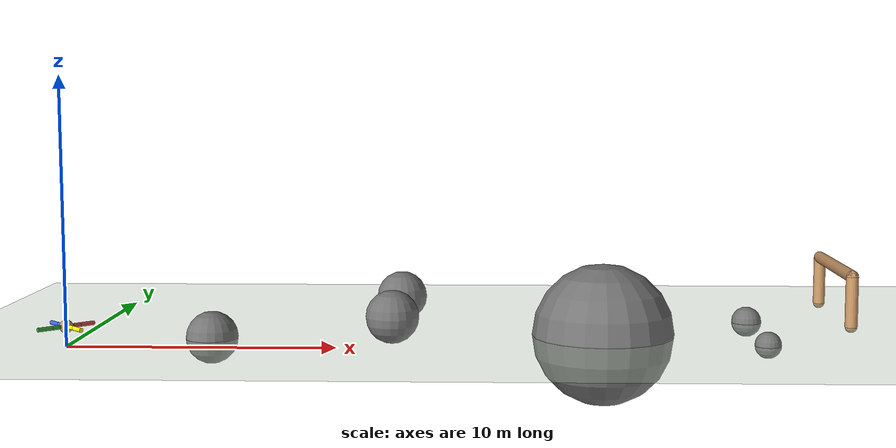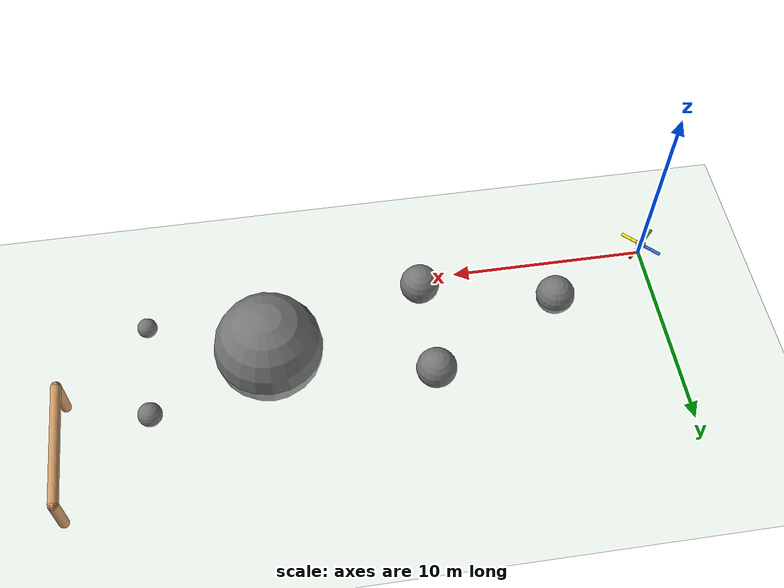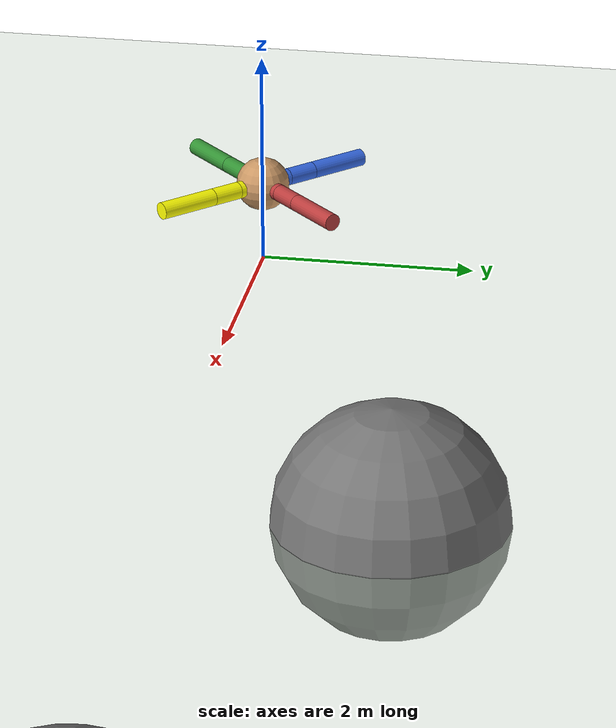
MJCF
<mujoco model="ant">
  <compiler angle="degree" coordinate="local" inertiafromgeom="true"/>
  <option integrator="RK4" timestep="0.01"/>
  <custom>
    <numeric data="0.0 0.0 0.55 1.0 0.0 0.0 0.0 0.0 1.0 0.0 -1.0 0.0 -1.0 0.0 1.0" name="init_qpos"/>
  </custom>
  <default>
    <joint armature="1" damping="1" limited="true"/>
    <geom conaffinity="0" condim="3" density="5.0" friction="1 0.5 0.5" margin="0.01" rgba="0.8 0.6 0.4 1"/>
  </default>
  <asset>
    <texture builtin="gradient" height="100" rgb1="1 1 1" rgb2="0 0 0" type="skybox" width="100"/>
    <texture builtin="flat" height="1278" mark="cross" markrgb="1 1 1" name="texgeom" random="0.01" rgb1="0.8 0.6 0.4" rgb2="0.8 0.6 0.4" type="cube" width="127"/>
    <texture builtin="checker" height="100" name="texplane" rgb1="0 0 0" rgb2="0.8 0.8 0.8" type="2d" width="100"/>
    <material name="MatPlane" reflectance="0.5" shininess="1" specular="1" texrepeat="60 60" texture="texplane"/>
    <material name="geom" texture="texgeom" texuniform="true"/>
  </asset>
  <worldbody>
    <light cutoff="100" diffuse="1 1 1" dir="-0 0 -1.3" directional="true" exponent="1" pos="0 0 1.3" specular=".1 .1 .1"/>
    <geom conaffinity="1" condim="3" material="MatPlane" name="floor" pos="0 0 0" rgba="0.8 0.9 0.8 1" size="40 40 40" type="plane"/>
    <body name="torso" pos="0 0 0.75">
      <camera name="track" mode="trackcom" pos="0 -3 0.3" xyaxes="1 0 0 0 0 1"/>
      <geom name="torso_geom" pos="0 0 0" size="0.25" type="sphere"/>
      <joint armature="0" damping="0" limited="false" margin="0.01" name="root" pos="0 0 0" type="free"/>
      <body name="front_left_leg" pos="0 0 0">
        <geom fromto="0.0 0.0 0.0 0.2 0.2 0.0" name="aux_1_geom" size="0.08" type="capsule" rgba="0.746 0.246 0.246 1"/>
        <body name="aux_1" pos="0.2 0.2 0">
          <joint axis="0 0 1" name="hip_1" pos="0.0 0.0 0.0" range="-30 30" type="hinge"/>
          <geom fromto="0.0 0.0 0.0 0.2 0.2 0.0" name="left_leg_geom" size="0.08" type="cylinder" rgba="0.746 0.246 0.246 1"/>
          <body pos="0.2 0.2 0">
            <joint axis="-1 1 0" name="ankle_1" pos="0.0 0.0 0.0" range="30 70" type="hinge"/>
            <geom fromto="0.0 0.0 0.0 0.4 0.4 0.0" name="left_ankle_geom" size="0.08" type="cylinder" rgba="0.746 0.246 0.246 1"/>
          </body>
        </body>
      </body>
      <body name="front_right_leg" pos="0 0 0">
        <geom fromto="0.0 0.0 0.0 -0.2 0.2 0.0" name="aux_2_geom" size="0.08" type="capsule" rgba="0.211 0.418 0.902 1"/>
        <body name="aux_2" pos="-0.2 0.2 0">
          <joint axis="0 0 1" name="hip_2" pos="0.0 0.0 0.0" range="-30 30" type="hinge"/>
          <geom fromto="0.0 0.0 0.0 -0.2 0.2 0.0" name="right_leg_geom" size="0.08" type="cylinder" rgba="0.211 0.418 0.902 1"/>
          <body pos="-0.2 0.2 0">
            <joint axis="1 1 0" name="ankle_2" pos="0.0 0.0 0.0" range="-70 -30" type="hinge"/>
            <geom fromto="0.0 0.0 0.0 -0.4 0.4 0.0" name="right_ankle_geom" size="0.08" type="cylinder" rgba="0.211 0.418 0.902 1"/>
          </body>
        </body>
      </body>
      <body name="back_leg" pos="0 0 0">
        <geom fromto="0.0 0.0 0.0 -0.2 -0.2 0.0" name="aux_3_geom" size="0.08" type="capsule" rgba="0.207 0.586 0.211 1"/>
        <body name="aux_3" pos="-0.2 -0.2 0">
          <joint axis="0 0 1" name="hip_3" pos="0.0 0.0 0.0" range="-30 30" type="hinge"/>
          <geom fromto="0.0 0.0 0.0 -0.2 -0.2 0.0" name="back_leg_geom" size="0.08" type="cylinder" rgba="0.207 0.586 0.211 1"/>
          <body pos="-0.2 -0.2 0">
            <joint axis="-1 1 0" name="ankle_3" pos="0.0 0.0 0.0" range="-70 -30" type="hinge"/>
            <geom fromto="0.0 0.0 0.0 -0.4 -0.4 0.0" name="third_ankle_geom" size="0.08" type="cylinder" rgba="0.207 0.586 0.211 1"/>
          </body>
        </body>
      </body>
      <body name="right_back_leg" pos="0 0 0">
        <geom fromto="0.0 0.0 0.0 0.2 -0.2 0.0" name="aux_4_geom" size="0.08" type="capsule" rgba="1 1 0 1"/>
        <body name="aux_4" pos="0.2 -0.2 0">
          <joint axis="0 0 1" name="hip_4" pos="0.0 0.0 0.0" range="-30 30" type="hinge"/>
          <geom fromto="0.0 0.0 0.0 0.2 -0.2 0.0" name="rightback_leg_geom" size="0.08" type="cylinder" rgba="1 1 0 1"/>
          <body pos="0.2 -0.2 0">
            <joint axis="1 1 0" name="ankle_4" pos="0.0 0.0 0.0" range="30 70" type="hinge"/>
            <geom fromto="0.0 0.0 0.0 0.4 -0.4 0.0" name="fourth_ankle_geom" size="0.08" type="cylinder" rgba="1 1 0 1"/>
          </body>
        </body>
      </body>
    </body>
    <body name="Goal" pos="30 8 0">
      <body name="Left_Post" pos="0 3 0">
        <geom fromto="0.0 0.0 0.0 0.0 0.0 2.0" name="left_post_geom" size="0.25" type="capsule"/>
      </body>
      <body name="Right_Post" pos="0 -3 0">
        <geom fromto="0.0 0.0 0.0 0.0 0.0 2.0" name="right_post_geom" size="0.25" type="capsule"/>
      </body>
      <body name="Cross_Bar" pos="0 0 2">
        <geom fromto="0.0 -3.0 0.0 0. 3.0 0.0" name="cross_bar_geom" size="0.25" type="capsule"/>
      </body>
    </body>
    <body name="Obstacle1" pos="5 2 0">
      <geom name="obstacle1_geom" pos="0 0 0" size="1.0" type="sphere" rgba="0.465 0.465 0.465 1"/>
    </body>
    <body name="Obstacle2" pos="12 6 1">
      <geom name="obstacle2_geom" pos="0 0 0" size="1.0" type="sphere" rgba="0.465 0.465 0.465 1"/>
    </body>
    <body name="Obstacle3" pos="12 1 1">
      <geom name="obstacle3_geom" pos="0 0 0" size="1.0" type="sphere" rgba="0.465 0.465 0.465 1"/>
    </body>
    <body name="Obstacle4" pos="20 3 0">
      <geom name="obstacle4_geom" pos="0 0 0" size="2.75" type="sphere" rgba="0.465 0.465 0.465 1"/>
    </body>
    <body name="Obstacle5" pos="26 6 0">
      <geom name="obstacle5_geom" pos="0 0 0" size=".6" type="sphere" rgba="0.465 0.465 0.465 1"/>
    </body>
    <body name="Obstacle6" pos="26 1 0">
      <geom name="obstacle6_geom" pos="0 0 0" size=".5" type="sphere" rgba="0.465 0.465 0.465 1"/>
    </body>
  </worldbody>
  <actuator>
    <position ctrllimited="true" ctrlrange="-100.0 100.0" joint="hip_4" gear="57.29577951"/>
    <position ctrllimited="true" ctrlrange="-100.0 100.0" joint="ankle_4" gear="57.29577951"/>
    <position ctrllimited="true" ctrlrange="-100.0 100.0" joint="hip_1" gear="57.29577951"/>
    <position ctrllimited="true" ctrlrange="-100.0 100.0" joint="ankle_1" gear="57.29577951"/>
    <position ctrllimited="true" ctrlrange="-100.0 100.0" joint="hip_2" gear="57.29577951"/>
    <position ctrllimited="true" ctrlrange="-100.0 100.0" joint="ankle_2" gear="57.29577951"/>
    <position ctrllimited="true" ctrlrange="-100.0 100.0" joint="hip_3" gear="57.29577951"/>
    <position ctrllimited="true" ctrlrange="-100.0 100.0" joint="ankle_3" gear="57.29577951"/>
  </actuator>
</mujoco>
